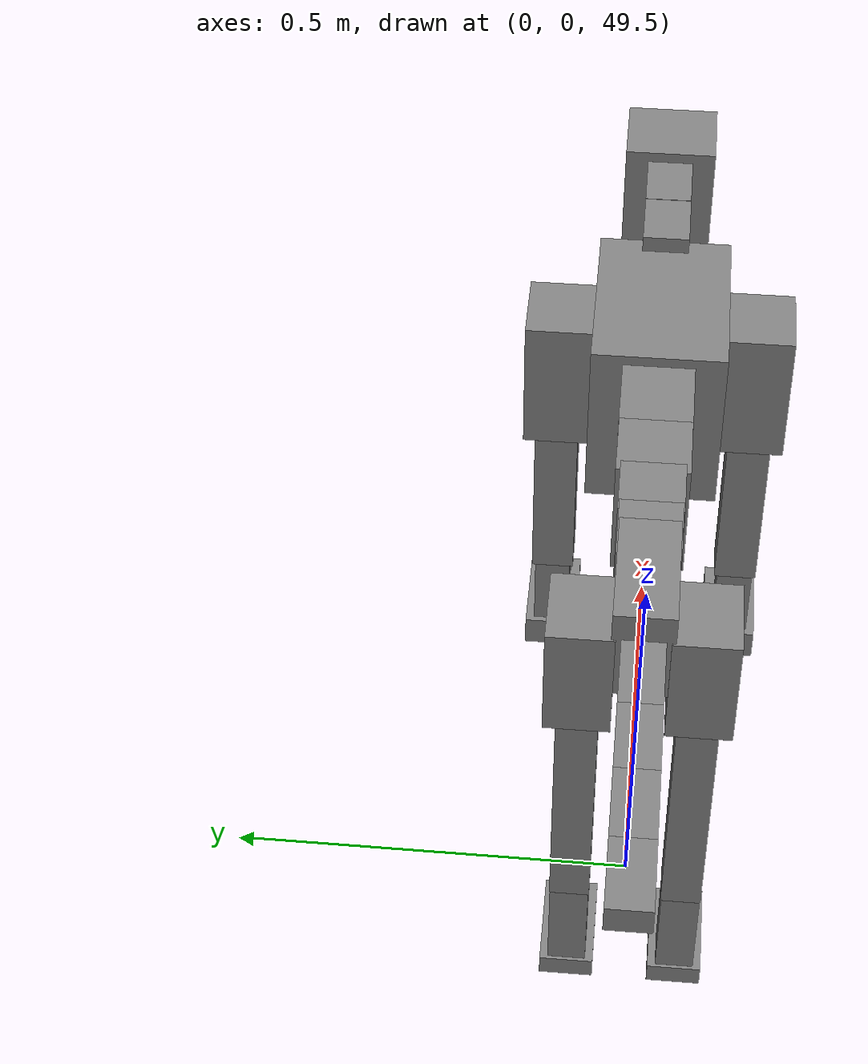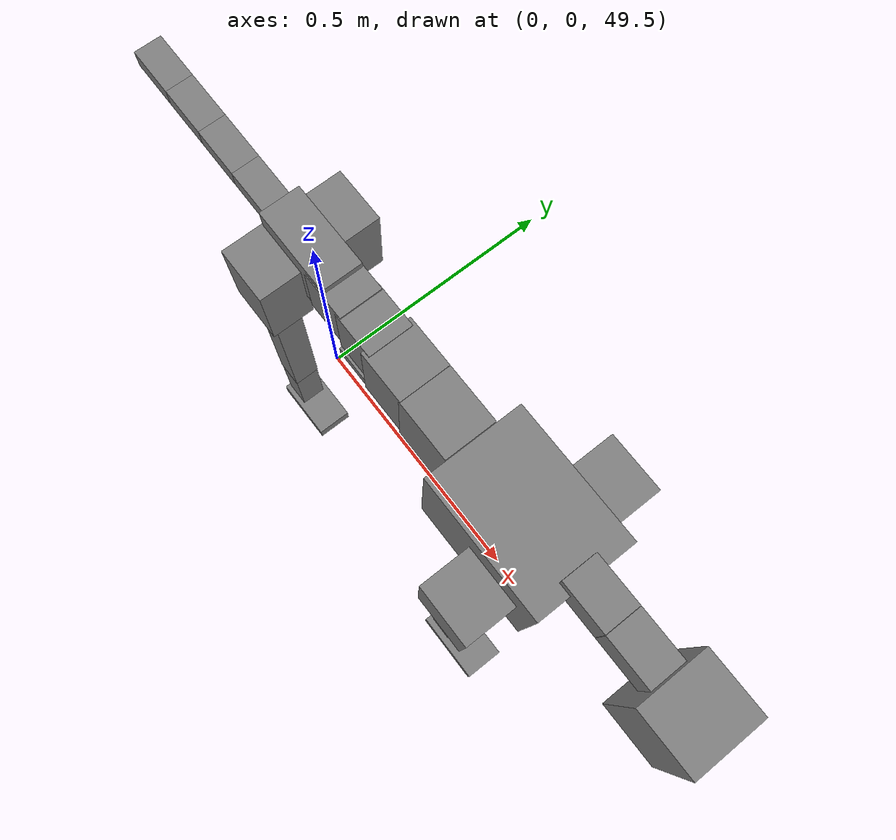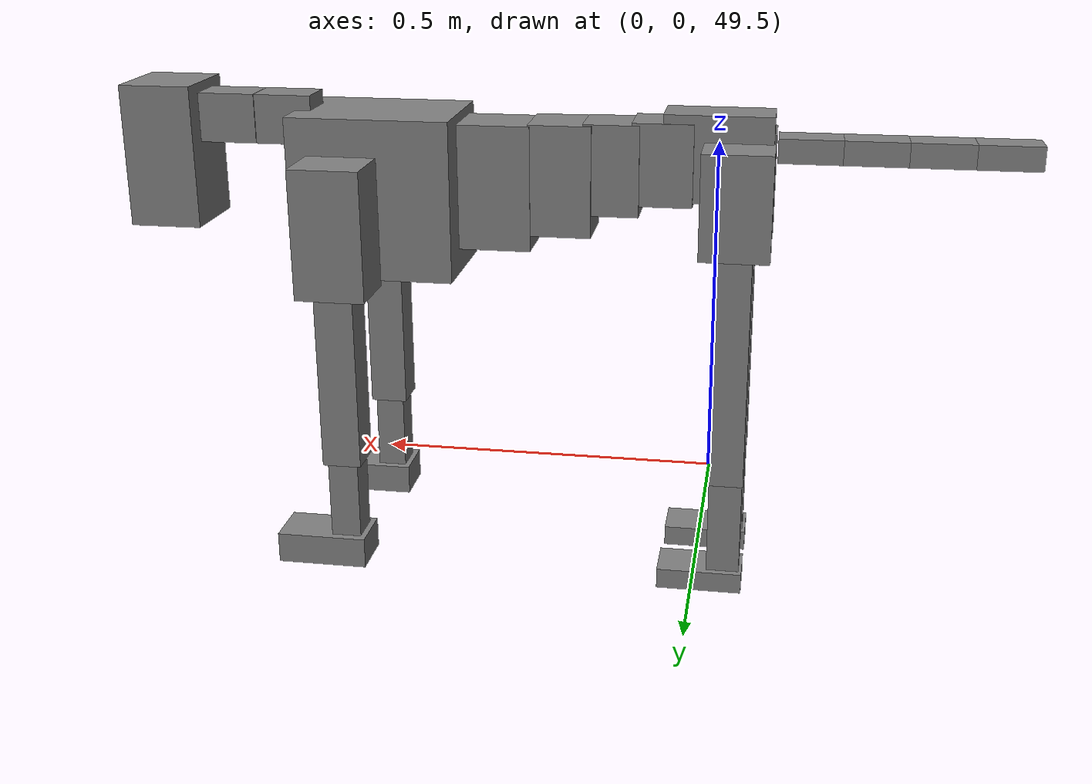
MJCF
<mujoco model="dog">

    <default>
        <joint armature="0.02" stiffness="1" damping="0.2" limited="true"/>
        <geom condim="3" friction="1 0.05 0.05" margin="0.01"/>
        <motor ctrllimited="true" ctrlrange="-1.0 1.0" forcelimited="true" gear="50"/>
    </default>

    <compiler inertiafromgeom="true" angle="radian"/>

    <option timestep="0.016" iterations="50" tolerance="1e-10" solver="Newton" jacobian="dense" cone="pyramidal"/>

    <size nconmax="20000" njmax="60000" nstack="5000000"/>
    <visual>
        <map force="0.1" zfar="30"/>
        <rgba haze="0.15 0.25 0.35 1"/>
        <quality shadowsize="2048"/>
        <global offwidth="800" offheight="800"/>
    </visual>

    <asset>
        <texture type="skybox" builtin="gradient" rgb1="0.3 0.5 0.7" rgb2="0 0 0" width="512" height="512"/>
        <texture name="texplane" type="2d" builtin="checker" rgb1=".2 .3 .4" rgb2=".1 0.15 0.2" width="512" height="512"
                 mark="cross" markrgb=".8 .8 .8"/>
        <texture name="texgeom" type="cube" builtin="flat" mark="cross" width="127" height="1278" rgb1="0.8 0.6 0.4"
                 rgb2="0.8 0.6 0.4" markrgb="1 1 1" random="0.01"/>

        <material name="matplane" reflectance="0.3" texture="texplane" texrepeat="1 1" texuniform="true"/>
        <material name="matgeom" texture="texgeom" texuniform="true" rgba="0.8 0.6 .4 1"/>
    </asset>

    <worldbody>
        <geom name="floor" pos="0 0 0" size="0 0 .25" type="plane" material="matplane" condim="3"/>

        <light directional="false" diffuse=".2 .2 .2" specular="0 0 0" pos="0 0 5" dir="0 0 -1" castshadow="false"/>
        <light mode="targetbodycom" target="torso" directional="false" diffuse=".8 .8 .8" specular="0.3 0.3 0.3"
               pos="0 0 4.0" dir="0 0 -1"/>

        <body name="root" pos="0 0 50">
            <freejoint name="root_1"/>
            <geom type="box" pos="0 0 -0.02" size="0.0774  0.0358  0.063" density="2030"/>

            <body name="spine1" pos="0.054 0 0">
                <joint name="spine1_y" axis="0 1 0" range="0 0.7" limited="true"/>
                <geom type="box" pos="0.02375 0 -0.03" size="0.04375  0.0375  0.05985" density="2030"/>

                <body name="spine2" pos="0.0612 0 0">
                    <joint name="spine2_y" axis="0 1 0" range="-0.15 0.15" limited="true"/>
                    <geom type="box" pos="0.03555  0  -0.04" size="0.04055  0.039  0.06615" density="2030"/>

                    <body name="spine3" pos="0.0730 0 0">
                        <joint name="spine3_y" axis="0 1 0" range="-0.15 0.15" limited="true"/>
                        <geom type="box" pos="0.03555  0  -0.057" size="0.04555  0.0445  0.081" density="2030"/>

                        <body name="spine4" pos="0.0780 0 0">
                            <joint name="spine4_y" axis="0 1 0" range="-0.15 0.15" limited="true"/>
                            <geom type="box" pos="0.05265  0  -0.07" size="0.05265  0.045  0.09135" density="2030"/>

                            <body name="torso" pos="0.1082 0 0">
                                <joint name="torso_y" axis="0 1 0" range="-0.15 0.15" limited="true"/>
                                <geom type="box" pos="0.11925  0  -0.085" size="0.11925  0.085  0.11745"
                                      density="2030"/>

                                <body name="neck1" pos="0.2160  0   0.0180">
                                    <joint name="neck1_y" axis="0 1 0" range="-1.2  -1" limited="true"/>
                                    <geom type="box" pos="0.0423  0  0" size="0.0423  0.03  0.036" density="2325"/>

                                    <body name="neck2" pos="0.0853  0  0">
                                        <joint name="neck2_y" axis="0 1 0" range="0.1  0" limited="true"/>
                                        <geom type="box" pos="0.0423  0  0" size="0.0423  0.03  0.036" density="2325"/>

                                        <body name="head" pos="0.0853  0  0">
                                            <joint name="head_y" axis="0 1 0" range="-0.3  -0.2" limited="true"/>
                                            <geom type="box" pos="0.0531  0  -0.055" size="0.0531  0.06  0.1044"
                                                  density="4030"/>

                                        </body>
                                    </body>
                                </body>

                                <body name="front_shoulder" pos="0.156  0   -0.0480">
                                    <joint name="front_shoulder_y" axis="0 1 0" range="-1 1.5" limited="true"/>
                                    <geom type="box" pos="0 0.13 -0.0678" size="0.0509  0.0435  0.0944" density="1158"/>
                                    <geom type="box" pos="0 -0.13 -0.0678" size="0.0509  0.0435  0.0944"
                                          density="1158"/>

                                    <body name="front_elbow" pos="0  0  -0.1355">
                                        <joint name="front_elbow_y" axis="0 1 0" range="-2 0" limited="true"/>
                                        <geom type="box" pos="0 0.13 -0.1424" size="0.0284  0.0290  0.1424"
                                              density="1081"/>
                                        <geom type="box" pos="0 -0.13 -0.1424" size="0.0284  0.0290  0.1424"
                                              density="1081"/>

                                        <body name="front_wrist" pos="0  0  -0.2847">
                                            <joint name="front_wrist_y" axis="0 1 0" range="-0.2 0" limited="true"/>
                                            <geom type="box" pos="0 0.13 -0.0651" size="0.0221  0.0246  0.0783"
                                                  density="1664"/>
                                            <geom type="box" pos="0 -0.13 -0.0651" size="0.0221  0.0246  0.0783"
                                                  density="1664"/>

                                            <body name="front_finger_end" pos="0  0  -0.1302">
                                                <joint name="front_finger_y" axis="0 1 0" range="-0.4 1"
                                                       limited="true"/>
                                                <geom type="box" pos="0.0364  0.13  -0.0078"
                                                      size="0.0667  0.0364  0.0228" density="1515"/>
                                                <geom type="box" pos="0.0364  -0.13  -0.0078"
                                                      size="0.0667  0.0364  0.0228" density="1515"/>

                                            </body>

                                        </body>
                                    </body>
                                </body>

                            </body>
                        </body>
                    </body>
                </body>
            </body>

            <body name="back_hip" pos="-0.03 0 -0.018">
                <joint name="back_hip_y" axis="0 1 0" range="-1.5 0.3" limited="true"/>
                <geom type="box" pos="0 0.07 -0.0532" size="0.0497  0.0390  0.0760" density="1154"/>
                <geom type="box" pos="0 -0.07 -0.0532" size="0.0497  0.0390  0.0760" density="1154"/>

                <body name="back_knee" pos="0  0  -0.1063">
                    <joint name="back_knee_y" axis="0 1 0" range="0 2.8" limited="true"/>
                    <geom type="box" pos="0 0.07 -0.1757" size="0.0252  0.0249  0.1912" density="1227"/>
                    <geom type="box" pos="0 -0.07 -0.1757" size="0.0252  0.0249  0.1912" density="1227"/>

                    <body name="back_ankle" pos="0  0  -0.3514">
                        <joint name="back_ankle_y" axis="0 1 0" range="-2.2 0" limited="true"/>
                        <geom type="box" pos="0 0.07 -0.0845" size="0.0242  0.0242  0.0958" density="1284"/>
                        <geom type="box" pos="0 -0.07 -0.0845" size="0.0242  0.0242  0.0958" density="1284"/>

                        <body name="back_toe_end" pos="0  0  -0.1691">
                            <joint name="back_toe_y" axis="0 1 0" range="-0.4 1" limited="true"/>
                            <geom type="box" pos="0.0343  0.07  -0.0002" size="0.0629  0.0343  0.0152" density="1515"/>
                            <geom type="box" pos="0.0343  -0.07  -0.0002" size="0.0629  0.0343  0.0152" density="1515"/>

                        </body>
                    </body>
                </body>
            </body>

            <body name="tail1" pos="-0.074 0 -0.006">
                <joint name="tail1_y" axis="0 1 0" range="-0.2 0.2" limited="true"/>
                <geom type="box" pos="-0.0536  0  0" size="0.045  0.025  0.0175" density="1587"/>

                <body name="tail2" pos="-0.09 0 0">
                    <joint name="tail2_y" axis="0 1 0" range="-0.2 0.2" limited="true"/>
                    <geom type="box" pos="-0.0536  0  0" size="0.045  0.025  0.0175" density="1587"/>

                    <body name="tail3" pos="-0.09 0 0">
                        <joint name="tail3_y" axis="0 1 0" range="-0.2 0.2" limited="true"/>
                        <geom type="box" pos="-0.0536  0  0" size="0.045  0.025  0.0175" density="1587"/>

                        <body name="tail4" pos="-0.09 0 0">
                            <joint name="tail4_y" axis="0 1 0" range="-0.2 0.2" limited="true"/>
                            <geom type="box" pos="-0.0536  0  0" size="0.045  0.025  0.0175" density="1587"/>

                        </body>
                    </body>
                </body>
            </body>
        </body>
    </worldbody>

    <actuator>
        <motor joint="spine1_y" forcerange="-150 150     "/>
        <motor joint="spine2_y" forcerange="-150 150     "/>
        <motor joint="spine3_y" forcerange="-150 150     "/>
        <motor joint="spine4_y" forcerange="-150 150     "/>
        <motor joint="torso_y" forcerange="-150 150     "/>
        <motor joint="neck1_y" forcerange="-100 100       "/>
        <motor joint="neck2_y" forcerange="-100 100       "/>
        <motor joint="head_y" forcerange="-150 150       "/>
        <motor joint="front_shoulder_y" forcerange="-191.54 198.60"/>
        <motor joint="front_elbow_y" forcerange="-187.51 123.56"/>
        <motor joint="front_wrist_y" forcerange="-89.92 106.63"/>
        <motor joint="front_finger_y" forcerange="-95.40 58.75"/>
        <motor joint="back_hip_y" forcerange="-333.16 386.71"/>
        <motor joint="back_knee_y" forcerange="-245.46 316.50"/>
        <motor joint="back_angle_y" forcerange="-140.14 147.32"/>
        <motor joint="back_toe_y" forcerange="-78.28 116.25"/>
        <motor joint="tail1_y" forcerange="-50 50     "/>
        <motor joint="tail2_y" forcerange="-50 50     "/>
        <motor joint="tail3_y" forcerange="-50 50     "/>
        <motor joint="tail4_y" forcerange="-50 50     "/>
    </actuator>
</mujoco>
